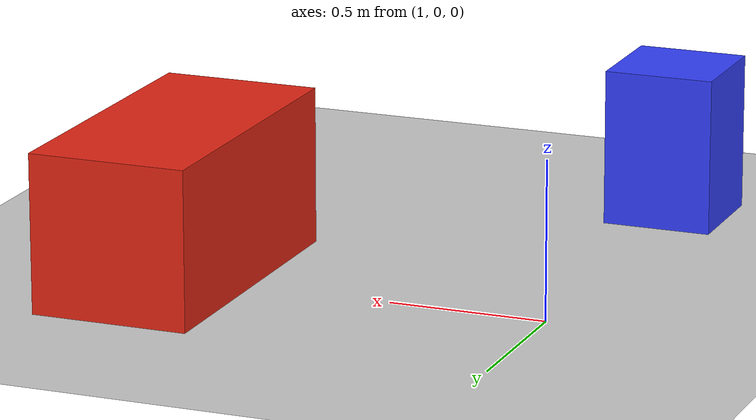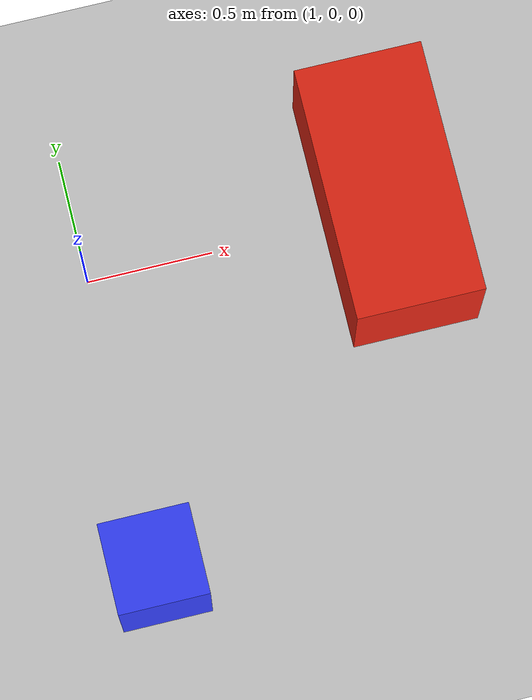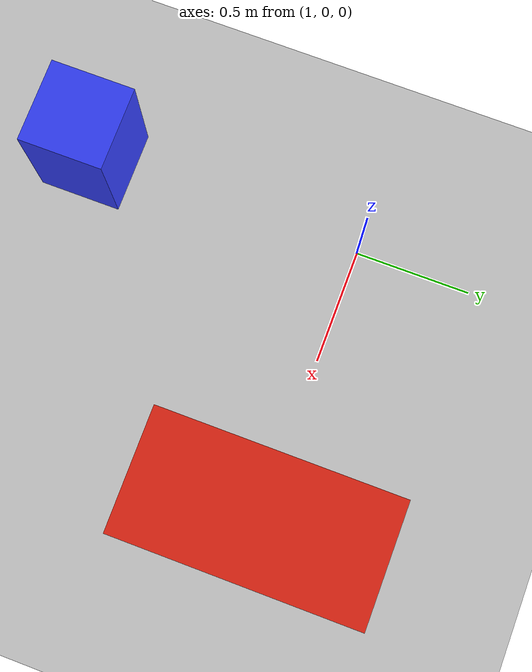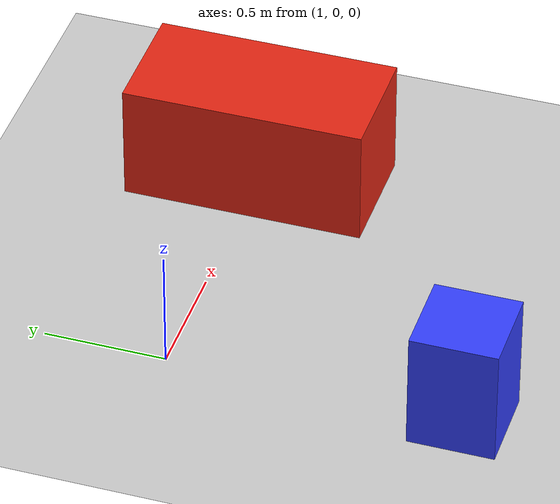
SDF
<?xml version="1.0"?>
<sdf version="1.6">
  <!-- 역할: Waver 키보드/순찰/안전 보조 노드를 headless Gazebo에서 검증하는 평지 world다. -->
  <world name="waver_flat">
    <!-- 역할: Gazebo entity pose 제어 서비스를 열어 동적 장애물 smoke test를 가능하게 한다. -->
    <plugin name="gazebo_ros_state" filename="libgazebo_ros_state.so"/>

    <!-- 역할: 기본 물리/조명/지면만 두어 렌더 센서 없이 안정적으로 실행한다. -->
    <include>
      <uri>model://sun</uri>
    </include>
    <include>
      <uri>model://ground_plane</uri>
    </include>

    <!-- 역할: /scan hard stop/slow down 확인용 전방 장애물이다. -->
    <model name="front_test_box">
      <static>true</static>
      <pose>2.2 0 0.25 0 0 0</pose>
      <link name="link">
        <collision name="collision">
          <geometry>
            <box>
              <size>0.5 1.0 0.5</size>
            </box>
          </geometry>
        </collision>
        <visual name="visual">
          <geometry>
            <box>
              <size>0.5 1.0 0.5</size>
            </box>
          </geometry>
          <material>
            <ambient>0.7 0.1 0.08 1.0</ambient>
            <diffuse>0.9 0.15 0.08 1.0</diffuse>
          </material>
        </visual>
      </link>
    </model>

    <!-- 역할: Gazebo smoke test에서 로봇 전방을 가로지르는 동적 장애물이다.
         waver_gazebo_dynamic_obstacle_node가 pose를 갱신한다. -->
    <model name="dynamic_test_box">
      <static>false</static>
      <pose>1.0 -1.2 0.25 0 0 0</pose>
      <link name="link">
        <inertial>
          <mass>2.0</mass>
          <inertia>
            <ixx>0.05</ixx>
            <iyy>0.05</iyy>
            <izz>0.05</izz>
            <ixy>0.0</ixy>
            <ixz>0.0</ixz>
            <iyz>0.0</iyz>
          </inertia>
        </inertial>
        <collision name="collision">
          <geometry>
            <box>
              <size>0.35 0.35 0.5</size>
            </box>
          </geometry>
        </collision>
        <visual name="visual">
          <geometry>
            <box>
              <size>0.35 0.35 0.5</size>
            </box>
          </geometry>
          <material>
            <ambient>0.15 0.15 0.85 1.0</ambient>
            <diffuse>0.2 0.25 1.0 1.0</diffuse>
          </material>
        </visual>
      </link>
    </model>
  </world>
</sdf>
